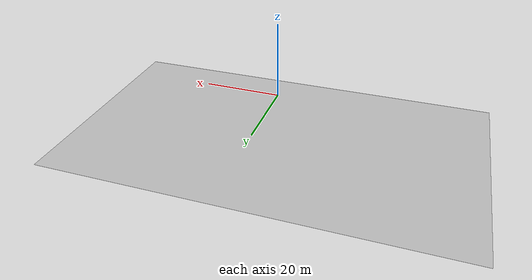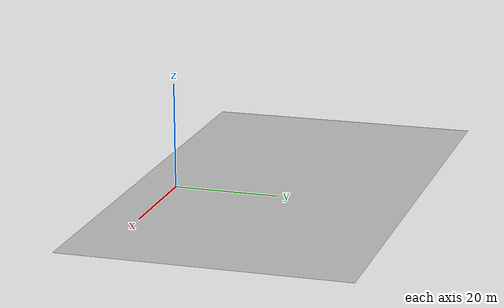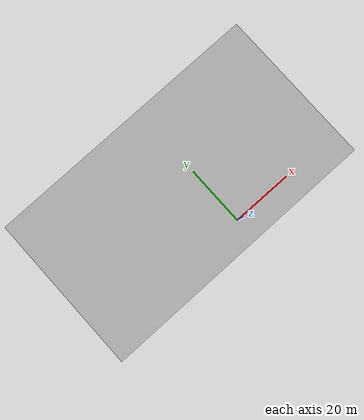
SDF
<?xml version="1.0" ?>
<sdf version="1.8">
  <!-- world name은 track.world와 같은 course_world로 둡니다. teleport_service /
       model_service / lane_sign_service가 이 이름을 기본값으로 씁니다. -->
  <world name="course_world">

    <physics name="4ms" type="ignored">
      <max_step_size>0.004</max_step_size>
      <real_time_factor>1.0</real_time_factor>
    </physics>

    <plugin filename="ignition-gazebo-physics-system"
            name="ignition::gazebo::systems::Physics"/>
    <plugin filename="ignition-gazebo-user-commands-system"
            name="ignition::gazebo::systems::UserCommands"/>
    <plugin filename="ignition-gazebo-scene-broadcaster-system"
            name="ignition::gazebo::systems::SceneBroadcaster"/>

    <scene>
      <ambient>0.6 0.6 0.6 1</ambient>
      <background>0.7 0.8 0.9 1</background>
    </scene>

    <light type="directional" name="sun">
      <cast_shadows>true</cast_shadows>
      <pose>-6.2 18.6 50.0000 0 0 0</pose>
      <diffuse>1 1 1 1</diffuse>
      <specular>0.4 0.4 0.4 1</specular>
      <direction>-0.3 0.2 -0.9</direction>
    </light>

    <!-- 학교 항공사진 바닥. 소품(라바콘, 신호등, 표지판, 차량)은 없습니다.
         pose는 driving_course/meshes/school.align.yaml의 center_x, center_y를
         그대로 씁니다 (rotation_deg 0). -->
    <include>
      <uri>model://school_course</uri>
      <name>school_course</name>
      <pose>-6.2 18.6 0 0 0 0</pose>
    </include>

    <spherical_coordinates>
      <surface_model>EARTH_WGS84</surface_model>
      <world_frame_orientation>ENU</world_frame_orientation>
      <latitude_deg>37.555047</latitude_deg>
      <longitude_deg>127.045522</longitude_deg>
      <elevation>0</elevation>
      <heading_deg>0</heading_deg>
    </spherical_coordinates>
  </world>
</sdf>

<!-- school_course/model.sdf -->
<sdf version="1.8">
  <model name="school_course">
    <static>true</static>
    <link name="base">

      <visual name="ground_visual">
        <geometry>
          <mesh><uri>model://driving_course/meshes/school_ground.obj</uri></mesh>
        </geometry>
      </visual>
      <collision name="ground_collision">
        <geometry>
          <plane><normal>0 0 1</normal><size>94.2045 53.1487</size></plane>
        </geometry>
        <surface>
          <friction><ode><mu>1.0</mu><mu2>1.0</mu2></ode></friction>
        </surface>
      </collision>

    </link>
  </model>
</sdf>
